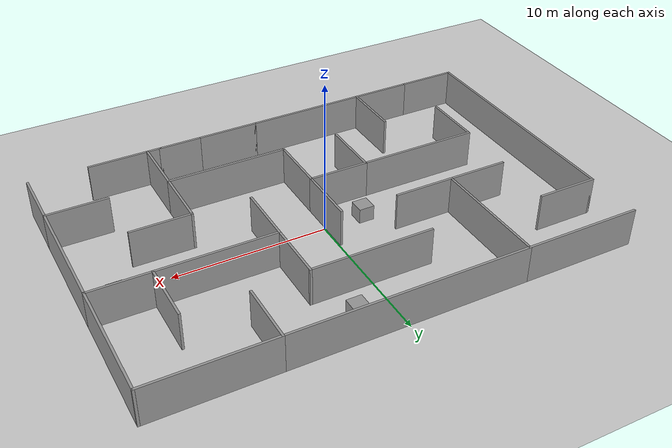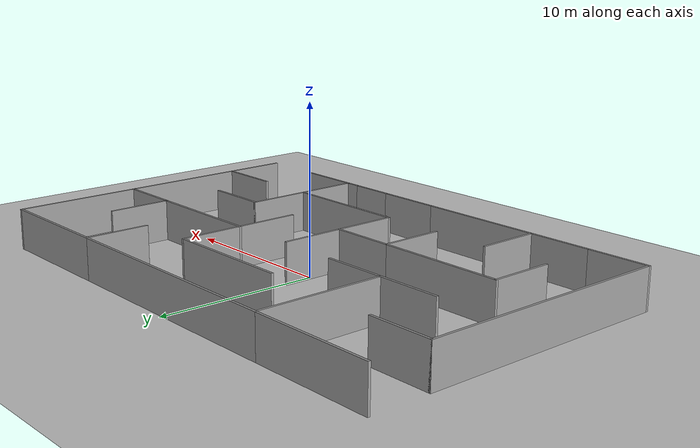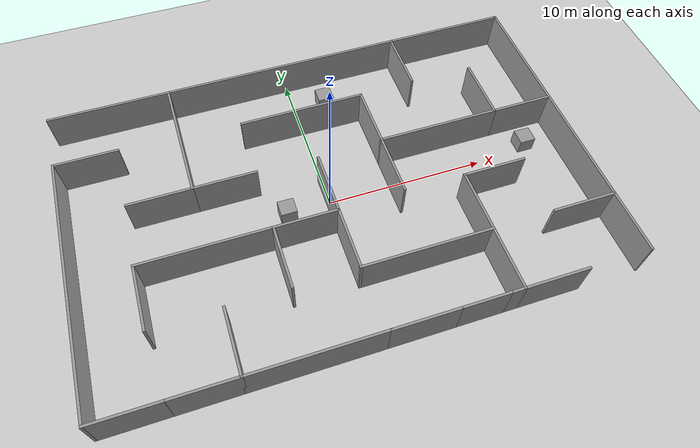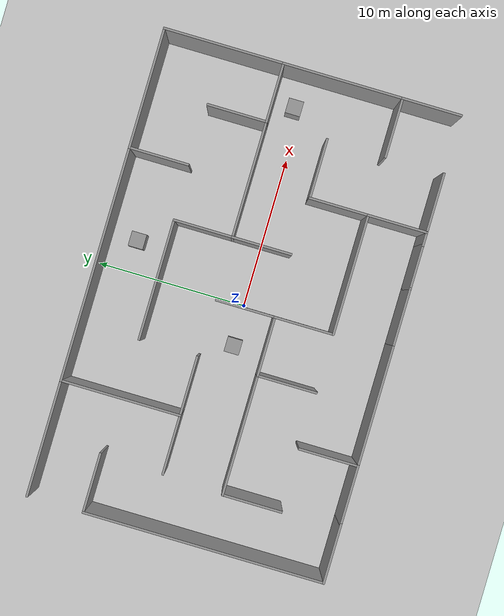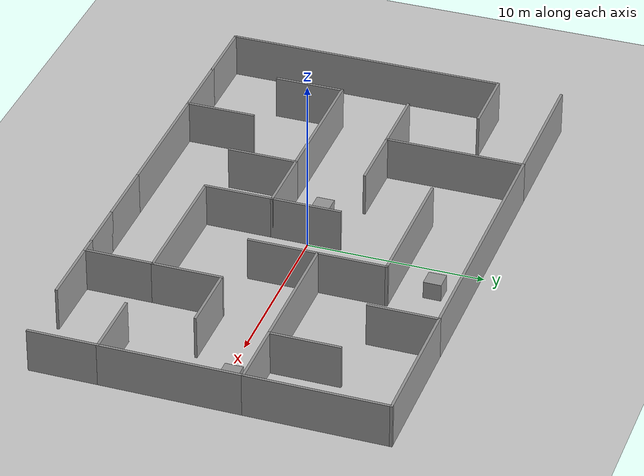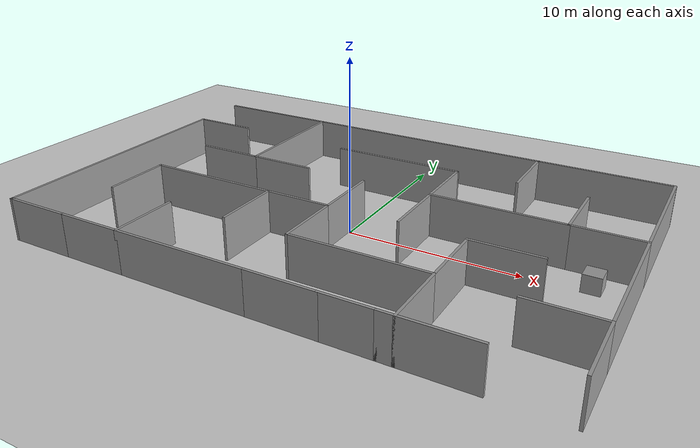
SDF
<sdf version="1.6">
 <world name="default">
  <light name="sun" type="directional">
   <pose>0 0 10 0 -0 0</pose>
   <diffuse>0.8 0.8 0.8 1</diffuse>
   <specular>0.1 0.1 0.1 1</specular>
   <attenuation>
    <range>1000</range>
    <constant>0.9</constant>
    <linear>0.01</linear>
    <quadratic>0.001</quadratic>
   </attenuation>
   <direction>-0.5 0.5 -1</direction>
  </light>
  <model name="ground_plane">
   <static>1</static>
   <link name="link">
    <collision name="collision">
     <geometry><plane><normal>0 0 1</normal><size>100 100</size></plane></geometry>
     <surface><friction><ode><mu>100</mu><mu2>50</mu2></ode></friction></surface>
    </collision>
    <visual name="visual">
     <cast_shadows>0</cast_shadows>
     <geometry><plane><normal>0 0 1</normal><size>100 100</size></plane></geometry>
     <material>
      <script><uri>file://media/materials/scripts/gazebo.material</uri><name>Gazebo/Grey</name></script>
     </material>
    </visual>
   </link>
  </model>
  <gravity>0 0 -9.8</gravity>
  <magnetic_field>6e-06 2.3e-05 -4.2e-05</magnetic_field>
  <atmosphere type="adiabatic"/>
  <physics name="default_physics" default="0" type="ode">
   <max_step_size>0.001</max_step_size>
   <real_time_factor>1</real_time_factor>
   <real_time_update_rate>1000</real_time_update_rate>
  </physics>
  <scene><ambient>0.4 0.4 0.4 1</ambient><background>0.7 0.7 0.7 1</background><shadows>1</shadows></scene>
  <spherical_coordinates>
   <surface_model>EARTH_WGS84</surface_model>
   <latitude_deg>0</latitude_deg>
   <longitude_deg>0</longitude_deg>
   <elevation>0</elevation>
   <heading_deg>0</heading_deg>
  </spherical_coordinates>
  <model name="maze_02">
   <link name="Wall_0">
    <collision name="Wall_0_Collision">
     <geometry><box><size>4 0.15 2.5</size></box></geometry>
     <pose>0 0 1.25 0 -0 0</pose>
    </collision>
    <visual name="Wall_0_Visual">
     <pose>0 0 1.25 0 -0 0</pose>
     <geometry><box><size>4 0.15 2.5</size></box></geometry>
     <material>
      <script><uri>file://media/materials/scripts/gazebo.material</uri><name>Gazebo/Grey</name></script>
      <ambient>1 1 1 1</ambient>
     </material>
    </visual>
    <pose>-13.475 -9.775 0 0 -0 3.14159</pose>
   </link>
   <link name="Wall_1">
    <collision name="Wall_1_Collision">
     <geometry><box><size>16 0.15 2.5</size></box></geometry>
     <pose>0 0 1.25 0 -0 0</pose>
    </collision>
    <visual name="Wall_1_Visual">
     <pose>0 0 1.25 0 -0 0</pose>
     <geometry><box><size>16 0.15 2.5</size></box></geometry>
     <material>
      <script><uri>file://media/materials/scripts/gazebo.material</uri><name>Gazebo/Grey</name></script>
      <ambient>1 1 1 1</ambient>
     </material>
    </visual>
    <pose>-15.4 -1.85 0 0 -0 1.5708</pose>
   </link>
   <link name="Wall_103">
    <collision name="Wall_103_Collision">
     <geometry><box><size>4 0.15 2.5</size></box></geometry>
     <pose>0 0 1.25 0 -0 0</pose>
    </collision>
    <visual name="Wall_103_Visual">
     <pose>0 0 1.25 0 -0 0</pose>
     <geometry><box><size>4 0.15 2.5</size></box></geometry>
     <material>
      <script><uri>file://media/materials/scripts/gazebo.material</uri><name>Gazebo/Grey</name></script>
      <ambient>1 1 1 1</ambient>
     </material>
    </visual>
    <pose>3.95 1e-06 0 0 0 -1.5708</pose>
   </link>
   <link name="Wall_105">
    <collision name="Wall_105_Collision">
     <geometry><box><size>4 0.15 2.5</size></box></geometry>
     <pose>0 0 1.25 0 -0 0</pose>
    </collision>
    <visual name="Wall_105_Visual">
     <pose>0 0 1.25 0 -0 0</pose>
     <geometry><box><size>4 0.15 2.5</size></box></geometry>
     <material>
      <script><uri>file://media/materials/scripts/gazebo.material</uri><name>Gazebo/Grey</name></script>
      <ambient>1 1 1 1</ambient>
     </material>
    </visual>
    <pose>3.95 3.85 0 0 -0 1.5708</pose>
   </link>
   <link name="Wall_106">
    <collision name="Wall_106_Collision">
     <geometry><box><size>8 0.15 2.5</size></box></geometry>
     <pose>0 0 1.25 0 -0 0</pose>
    </collision>
    <visual name="Wall_106_Visual">
     <pose>0 0 1.25 0 -0 0</pose>
     <geometry><box><size>8 0.15 2.5</size></box></geometry>
     <material>
      <script><uri>file://media/materials/scripts/gazebo.material</uri><name>Gazebo/Grey</name></script>
      <ambient>1 1 1 1</ambient>
     </material>
    </visual>
    <pose>0.025 5.775 0 0 -0 3.14159</pose>
   </link>
   <link name="Wall_19">
    <collision name="Wall_19_Collision">
     <geometry><box><size>1 0.15 2.5</size></box></geometry>
     <pose>0 0 1.25 0 -0 0</pose>
    </collision>
    <visual name="Wall_19_Visual">
     <pose>0 0 1.25 0 -0 0</pose>
     <geometry><box><size>1 0.15 2.5</size></box></geometry>
     <material>
      <script><uri>file://media/materials/scripts/gazebo.material</uri><name>Gazebo/Grey</name></script>
      <ambient>1 1 1 1</ambient>
     </material>
    </visual>
    <pose>7.275 -9.775 0 0 -0 0</pose>
   </link>
   <link name="Wall_2">
    <collision name="Wall_2_Collision">
     <geometry><box><size>4 0.15 2.5</size></box></geometry>
     <pose>0 0 1.25 0 -0 0</pose>
    </collision>
    <visual name="Wall_2_Visual">
     <pose>0 0 1.25 0 -0 0</pose>
     <geometry><box><size>4 0.15 2.5</size></box></geometry>
     <material>
      <script><uri>file://media/materials/scripts/gazebo.material</uri><name>Gazebo/Grey</name></script>
      <ambient>1 1 1 1</ambient>
     </material>
    </visual>
    <pose>-13.475 6.075 0 0 -0 0</pose>
   </link>
   <link name="Wall_25">
    <collision name="Wall_25_Collision">
     <geometry><box><size>4 0.15 2.5</size></box></geometry>
     <pose>0 0 1.25 0 -0 0</pose>
    </collision>
    <visual name="Wall_25_Visual">
     <pose>0 0 1.25 0 -0 0</pose>
     <geometry><box><size>4 0.15 2.5</size></box></geometry>
     <material>
      <script><uri>file://media/materials/scripts/gazebo.material</uri><name>Gazebo/Grey</name></script>
      <ambient>1 1 1 1</ambient>
     </material>
    </visual>
    <pose>7.7 -7.85 0 0 -0 1.5708</pose>
   </link>
   <link name="Wall_26">
    <collision name="Wall_26_Collision">
     <geometry><box><size>4 0.15 2.5</size></box></geometry>
     <pose>0 0 1.25 0 -0 0</pose>
    </collision>
    <visual name="Wall_26_Visual">
     <pose>0 0 1.25 0 -0 0</pose>
     <geometry><box><size>4 0.15 2.5</size></box></geometry>
     <material>
      <script><uri>file://media/materials/scripts/gazebo.material</uri><name>Gazebo/Grey</name></script>
      <ambient>1 1 1 1</ambient>
     </material>
    </visual>
    <pose>7.7 -4 0 0 -0 1.5708</pose>
   </link>
   <link name="Wall_27">
    <collision name="Wall_27_Collision">
     <geometry><box><size>4 0.15 2.5</size></box></geometry>
     <pose>0 0 1.25 0 -0 0</pose>
    </collision>
    <visual name="Wall_27_Visual">
     <pose>0 0 1.25 0 -0 0</pose>
     <geometry><box><size>4 0.15 2.5</size></box></geometry>
     <material>
      <script><uri>file://media/materials/scripts/gazebo.material</uri><name>Gazebo/Grey</name></script>
      <ambient>1 1 1 1</ambient>
     </material>
    </visual>
    <pose>9.625 -2.075 0 0 -0 0</pose>
   </link>
   <link name="Wall_29">
    <collision name="Wall_29_Collision">
     <geometry><box><size>8 0.15 2.5</size></box></geometry>
     <pose>0 0 1.25 0 -0 0</pose>
    </collision>
    <visual name="Wall_29_Visual">
     <pose>0 0 1.25 0 -0 0</pose>
     <geometry><box><size>8 0.15 2.5</size></box></geometry>
     <material>
      <script><uri>file://media/materials/scripts/gazebo.material</uri><name>Gazebo/Grey</name></script>
      <ambient>1 1 1 1</ambient>
     </material>
    </visual>
    <pose>3.775 -5.925 0 0 -0 3.14159</pose>
   </link>
   <link name="Wall_30">
    <collision name="Wall_30_Collision">
     <geometry><box><size>4 0.15 2.5</size></box></geometry>
     <pose>0 0 1.25 0 -0 0</pose>
    </collision>
    <visual name="Wall_30_Visual">
     <pose>0 0 1.25 0 -0 0</pose>
     <geometry><box><size>4 0.15 2.5</size></box></geometry>
     <material>
      <script><uri>file://media/materials/scripts/gazebo.material</uri><name>Gazebo/Grey</name></script>
      <ambient>1 1 1 1</ambient>
     </material>
    </visual>
    <pose>-0.15 -4 0 0 -0 1.5708</pose>
   </link>
   <link name="Wall_31">
    <collision name="Wall_31_Collision">
     <geometry><box><size>4 0.15 2.5</size></box></geometry>
     <pose>0 0 1.25 0 -0 0</pose>
    </collision>
    <visual name="Wall_31_Visual">
     <pose>0 0 1.25 0 -0 0</pose>
     <geometry><box><size>4 0.15 2.5</size></box></geometry>
     <material>
      <script><uri>file://media/materials/scripts/gazebo.material</uri><name>Gazebo/Grey</name></script>
      <ambient>1 1 1 1</ambient>
     </material>
    </visual>
    <pose>-2.075 -2.075 0 0 -0 3.14159</pose>
   </link>
   <link name="Wall_32">
    <collision name="Wall_32_Collision">
     <geometry><box><size>4 0.15 2.5</size></box></geometry>
     <pose>0 0 1.25 0 -0 0</pose>
    </collision>
    <visual name="Wall_32_Visual">
     <pose>0 0 1.25 0 -0 0</pose>
     <geometry><box><size>4 0.15 2.5</size></box></geometry>
     <material>
      <script><uri>file://media/materials/scripts/gazebo.material</uri><name>Gazebo/Grey</name></script>
      <ambient>1 1 1 1</ambient>
     </material>
    </visual>
    <pose>-4 -4 0 0 0 -1.5708</pose>
   </link>
   <link name="Wall_34">
    <collision name="Wall_34_Collision">
     <geometry><box><size>8 0.15 2.5</size></box></geometry>
     <pose>0 0 1.25 0 -0 0</pose>
    </collision>
    <visual name="Wall_34_Visual">
     <pose>0 0 1.25 0 -0 0</pose>
     <geometry><box><size>8 0.15 2.5</size></box></geometry>
     <material>
      <script><uri>file://media/materials/scripts/gazebo.material</uri><name>Gazebo/Grey</name></script>
      <ambient>1 1 1 1</ambient>
     </material>
    </visual>
    <pose>-7.925 -2.075 0 0 -0 3.14159</pose>
   </link>
   <link name="Wall_35">
    <collision name="Wall_35_Collision">
     <geometry><box><size>4 0.15 2.5</size></box></geometry>
     <pose>0 0 1.25 0 -0 0</pose>
    </collision>
    <visual name="Wall_35_Visual">
     <pose>0 0 1.25 0 -0 0</pose>
     <geometry><box><size>4 0.15 2.5</size></box></geometry>
     <material>
      <script><uri>file://media/materials/scripts/gazebo.material</uri><name>Gazebo/Grey</name></script>
      <ambient>1 1 1 1</ambient>
     </material>
    </visual>
    <pose>-11.85 -4 0 0 0 -1.5708</pose>
   </link>
   <link name="Wall_37">
    <collision name="Wall_37_Collision">
     <geometry><box><size>4 0.15 2.5</size></box></geometry>
     <pose>0 0 1.25 0 -0 0</pose>
    </collision>
    <visual name="Wall_37_Visual">
     <pose>0 0 1.25 0 -0 0</pose>
     <geometry><box><size>4 0.15 2.5</size></box></geometry>
     <material>
      <script><uri>file://media/materials/scripts/gazebo.material</uri><name>Gazebo/Grey</name></script>
      <ambient>1 1 1 1</ambient>
     </material>
    </visual>
    <pose>-0.15 -0.149999 0 0 -0 1.5708</pose>
   </link>
   <link name="Wall_4">
    <collision name="Wall_4_Collision">
     <geometry><box><size>4 0.15 2.5</size></box></geometry>
     <pose>0 0 1.25 0 -0 0</pose>
    </collision>
    <visual name="Wall_4_Visual">
     <pose>0 0 1.25 0 -0 0</pose>
     <geometry><box><size>4 0.15 2.5</size></box></geometry>
     <material>
      <script><uri>file://media/materials/scripts/gazebo.material</uri><name>Gazebo/Grey</name></script>
      <ambient>1 1 1 1</ambient>
     </material>
    </visual>
    <pose>-9.625 -9.775 0 0 -0 0</pose>
   </link>
   <link name="Wall_43">
    <collision name="Wall_43_Collision">
     <geometry><box><size>4 0.15 2.5</size></box></geometry>
     <pose>0 0 1.25 0 -0 0</pose>
    </collision>
    <visual name="Wall_43_Visual">
     <pose>0 0 1.25 0 -0 0</pose>
     <geometry><box><size>4 0.15 2.5</size></box></geometry>
     <material>
      <script><uri>file://media/materials/scripts/gazebo.material</uri><name>Gazebo/Grey</name></script>
      <ambient>1 1 1 1</ambient>
     </material>
    </visual>
    <pose>9.625 -9.775 0 0 -0 0</pose>
   </link>
   <link name="Wall_5">
    <collision name="Wall_5_Collision">
     <geometry><box><size>4 0.15 2.5</size></box></geometry>
     <pose>0 0 1.25 0 -0 0</pose>
    </collision>
    <visual name="Wall_5_Visual">
     <pose>0 0 1.25 0 -0 0</pose>
     <geometry><box><size>4 0.15 2.5</size></box></geometry>
     <material>
      <script><uri>file://media/materials/scripts/gazebo.material</uri><name>Gazebo/Grey</name></script>
      <ambient>1 1 1 1</ambient>
     </material>
    </visual>
    <pose>-7.7 -7.85 0 0 -0 1.5708</pose>
   </link>
   <link name="Wall_60">
    <collision name="Wall_60_Collision">
     <geometry><box><size>4 0.15 2.5</size></box></geometry>
     <pose>0 0 1.25 0 -0 0</pose>
    </collision>
    <visual name="Wall_60_Visual">
     <pose>0 0 1.25 0 -0 0</pose>
     <geometry><box><size>4 0.15 2.5</size></box></geometry>
     <material>
      <script><uri>file://media/materials/scripts/gazebo.material</uri><name>Gazebo/Grey</name></script>
      <ambient>1 1 1 1</ambient>
     </material>
    </visual>
    <pose>15.4 -7.85 0 0 -0 1.5708</pose>
   </link>
   <link name="Wall_61">
    <collision name="Wall_61_Collision">
     <geometry><box><size>4 0.15 2.5</size></box></geometry>
     <pose>0 0 1.25 0 -0 0</pose>
    </collision>
    <visual name="Wall_61_Visual">
     <pose>0 0 1.25 0 -0 0</pose>
     <geometry><box><size>4 0.15 2.5</size></box></geometry>
     <material>
      <script><uri>file://media/materials/scripts/gazebo.material</uri><name>Gazebo/Grey</name></script>
      <ambient>1 1 1 1</ambient>
     </material>
    </visual>
    <pose>13.475 -5.925 0 0 -0 3.14159</pose>
   </link>
   <link name="Wall_63">
    <collision name="Wall_63_Collision">
     <geometry><box><size>8 0.15 2.5</size></box></geometry>
     <pose>0 0 1.25 0 -0 0</pose>
    </collision>
    <visual name="Wall_63_Visual">
     <pose>0 0 1.25 0 -0 0</pose>
     <geometry><box><size>8 0.15 2.5</size></box></geometry>
     <material>
      <script><uri>file://media/materials/scripts/gazebo.material</uri><name>Gazebo/Grey</name></script>
      <ambient>1 1 1 1</ambient>
     </material>
    </visual>
    <pose>15.4 -2 0 0 -0 1.5708</pose>
   </link>
   <link name="Wall_65">
    <collision name="Wall_65_Collision">
     <geometry><box><size>4 0.15 2.5</size></box></geometry>
     <pose>0 0 1.25 0 -0 0</pose>
    </collision>
    <visual name="Wall_65_Visual">
     <pose>0 0 1.25 0 -0 0</pose>
     <geometry><box><size>4 0.15 2.5</size></box></geometry>
     <material>
      <script><uri>file://media/materials/scripts/gazebo.material</uri><name>Gazebo/Grey</name></script>
      <ambient>1 1 1 1</ambient>
     </material>
    </visual>
    <pose>13.475 1.925 0 0 -0 3.14159</pose>
   </link>
   <link name="Wall_66">
    <collision name="Wall_66_Collision">
     <geometry><box><size>4 0.15 2.5</size></box></geometry>
     <pose>0 0 1.25 0 -0 0</pose>
    </collision>
    <visual name="Wall_66_Visual">
     <pose>0 0 1.25 0 -0 0</pose>
     <geometry><box><size>4 0.15 2.5</size></box></geometry>
     <material>
      <script><uri>file://media/materials/scripts/gazebo.material</uri><name>Gazebo/Grey</name></script>
      <ambient>1 1 1 1</ambient>
     </material>
    </visual>
    <pose>11.55 3.85 0 0 -0 1.5708</pose>
   </link>
   <link name="Wall_68">
    <collision name="Wall_68_Collision">
     <geometry><box><size>8 0.15 2.5</size></box></geometry>
     <pose>0 0 1.25 0 -0 0</pose>
    </collision>
    <visual name="Wall_68_Visual">
     <pose>0 0 1.25 0 -0 0</pose>
     <geometry><box><size>8 0.15 2.5</size></box></geometry>
     <material>
      <script><uri>file://media/materials/scripts/gazebo.material</uri><name>Gazebo/Grey</name></script>
      <ambient>1 1 1 1</ambient>
     </material>
    </visual>
    <pose>15.4 5.85 0 0 -0 1.5708</pose>
   </link>
   <link name="Wall_7">
    <collision name="Wall_7_Collision">
     <geometry><box><size>8 0.15 2.5</size></box></geometry>
     <pose>0 0 1.25 0 -0 0</pose>
    </collision>
    <visual name="Wall_7_Visual">
     <pose>0 0 1.25 0 -0 0</pose>
     <geometry><box><size>8 0.15 2.5</size></box></geometry>
     <material>
      <script><uri>file://media/materials/scripts/gazebo.material</uri><name>Gazebo/Grey</name></script>
      <ambient>1 1 1 1</ambient>
     </material>
    </visual>
    <pose>-3.775 -9.775 0 0 -0 0</pose>
   </link>
   <link name="Wall_72">
    <collision name="Wall_72_Collision">
     <geometry><box><size>8 0.15 2.5</size></box></geometry>
     <pose>0 0 1.25 0 -0 0</pose>
    </collision>
    <visual name="Wall_72_Visual">
     <pose>0 0 1.25 0 -0 0</pose>
     <geometry><box><size>8 0.15 2.5</size></box></geometry>
     <material>
      <script><uri>file://media/materials/scripts/gazebo.material</uri><name>Gazebo/Grey</name></script>
      <ambient>1 1 1 1</ambient>
     </material>
    </visual>
    <pose>11.475 9.775 0 0 -0 3.14159</pose>
   </link>
   <link name="Wall_73">
    <collision name="Wall_73_Collision">
     <geometry><box><size>4 0.15 2.5</size></box></geometry>
     <pose>0 0 1.25 0 -0 0</pose>
    </collision>
    <visual name="Wall_73_Visual">
     <pose>0 0 1.25 0 -0 0</pose>
     <geometry><box><size>4 0.15 2.5</size></box></geometry>
     <material>
      <script><uri>file://media/materials/scripts/gazebo.material</uri><name>Gazebo/Grey</name></script>
      <ambient>1 1 1 1</ambient>
     </material>
    </visual>
    <pose>7.55 7.85 0 0 0 -1.5708</pose>
   </link>
   <link name="Wall_76">
    <collision name="Wall_76_Collision">
     <geometry><box><size>15.5 0.15 2.5</size></box></geometry>
     <pose>0 0 1.25 0 -0 0</pose>
    </collision>
    <visual name="Wall_76_Visual">
     <pose>0 0 1.25 0 -0 0</pose>
     <geometry><box><size>15.5 0.15 2.5</size></box></geometry>
     <material>
      <script><uri>file://media/materials/scripts/gazebo.material</uri><name>Gazebo/Grey</name></script>
      <ambient>1 1 1 1</ambient>
     </material>
    </visual>
    <pose>-0.125 9.775 0 0 -0 3.14159</pose>
   </link>
   <link name="Wall_77">
    <collision name="Wall_77_Collision">
     <geometry><box><size>7.75 0.15 2.5</size></box></geometry>
     <pose>0 0 1.25 0 -0 0</pose>
    </collision>
    <visual name="Wall_77_Visual">
     <pose>0 0 1.25 0 -0 0</pose>
     <geometry><box><size>7.75 0.15 2.5</size></box></geometry>
     <material>
      <script><uri>file://media/materials/scripts/gazebo.material</uri><name>Gazebo/Grey</name></script>
      <ambient>1 1 1 1</ambient>
     </material>
    </visual>
    <pose>-11.6 9.775 0 0 -0 3.14159</pose>
   </link>
   <link name="Wall_8">
    <collision name="Wall_8_Collision">
     <geometry><box><size>4 0.15 2.5</size></box></geometry>
     <pose>0 0 1.25 0 -0 0</pose>
    </collision>
    <visual name="Wall_8_Visual">
     <pose>0 0 1.25 0 -0 0</pose>
     <geometry><box><size>4 0.15 2.5</size></box></geometry>
     <material>
      <script><uri>file://media/materials/scripts/gazebo.material</uri><name>Gazebo/Grey</name></script>
      <ambient>1 1 1 1</ambient>
     </material>
    </visual>
    <pose>2.075 -9.775 0 0 -0 0</pose>
   </link>
   <link name="Wall_83">
    <collision name="Wall_83_Collision">
     <geometry><box><size>8 0.15 2.5</size></box></geometry>
     <pose>0 0 1.25 0 -0 0</pose>
    </collision>
    <visual name="Wall_83_Visual">
     <pose>0 0 1.25 0 -0 0</pose>
     <geometry><box><size>8 0.15 2.5</size></box></geometry>
     <material>
      <script><uri>file://media/materials/scripts/gazebo.material</uri><name>Gazebo/Grey</name></script>
      <ambient>1 1 1 1</ambient>
     </material>
    </visual>
    <pose>-7.8 5.85 0 0 0 -1.5708</pose>
   </link>
   <link name="Wall_84">
    <collision name="Wall_84_Collision">
     <geometry><box><size>4 0.15 2.5</size></box></geometry>
     <pose>0 0 1.25 0 -0 0</pose>
    </collision>
    <visual name="Wall_84_Visual">
     <pose>0 0 1.25 0 -0 0</pose>
     <geometry><box><size>4 0.15 2.5</size></box></geometry>
     <material>
      <script><uri>file://media/materials/scripts/gazebo.material</uri><name>Gazebo/Grey</name></script>
      <ambient>1 1 1 1</ambient>
     </material>
    </visual>
    <pose>-9.725 1.925 0 0 -0 3.14159</pose>
   </link>
   <link name="Wall_86">
    <collision name="Wall_86_Collision">
     <geometry><box><size>4 0.15 2.5</size></box></geometry>
     <pose>0 0 1.25 0 -0 0</pose>
    </collision>
    <visual name="Wall_86_Visual">
     <pose>0 0 1.25 0 -0 0</pose>
     <geometry><box><size>4 0.15 2.5</size></box></geometry>
     <material>
      <script><uri>file://media/materials/scripts/gazebo.material</uri><name>Gazebo/Grey</name></script>
      <ambient>1 1 1 1</ambient>
     </material>
    </visual>
    <pose>-5.875 1.925 0 0 -0 0</pose>
   </link>
   <link name="Wall_9">
    <collision name="Wall_9_Collision">
     <geometry><box><size>3 0.15 2.5</size></box></geometry>
     <pose>0 0 1.25 0 -0 0</pose>
    </collision>
    <visual name="Wall_9_Visual">
     <pose>0 0 1.25 0 -0 0</pose>
     <geometry><box><size>3 0.15 2.5</size></box></geometry>
     <material>
      <script><uri>file://media/materials/scripts/gazebo.material</uri><name>Gazebo/Grey</name></script>
      <ambient>1 1 1 1</ambient>
     </material>
    </visual>
    <pose>5.425 -9.775 0 0 -0 0</pose>
   </link>
   <link name="Wall_96">
    <collision name="Wall_96_Collision">
     <geometry><box><size>7.75 0.15 2.5</size></box></geometry>
     <pose>0 0 1.25 0 -0 0</pose>
    </collision>
    <visual name="Wall_96_Visual">
     <pose>0 0 1.25 0 -0 0</pose>
     <geometry><box><size>7.75 0.15 2.5</size></box></geometry>
     <material>
      <script><uri>file://media/materials/scripts/gazebo.material</uri><name>Gazebo/Grey</name></script>
      <ambient>1 1 1 1</ambient>
     </material>
    </visual>
    <pose>7.75 1.925 0 0 -0 3.14159</pose>
   </link>
   <static>1</static>
  </model>
  <model name="unit_box_0">
   <pose>-2.7071 -0.063191 0.499995 0 1e-05 0</pose>
   <link name="link">
    <inertial>
     <mass>1</mass>
     <inertia>
      <ixx>0.166667</ixx>
      <ixy>0</ixy>
      <ixz>0</ixz>
      <iyy>0.166667</iyy>
      <iyz>0</iyz>
      <izz>0.166667</izz>
     </inertia>
    </inertial>
    <collision name="collision"><geometry><box><size>1 1 1</size></box></geometry></collision>
    <visual name="visual">
     <geometry><box><size>1 1 1</size></box></geometry>
     <material>
      <script><name>Gazebo/Grey</name><uri>file://media/materials/scripts/gazebo.material</uri></script>
     </material>
    </visual>
   </link>
  </model>
  <model name="unit_box_1">
   <pose>13.3373 0.49772 0.499995 -1e-05 0 0</pose>
   <link name="link">
    <inertial>
     <mass>1</mass>
     <inertia>
      <ixx>0.166667</ixx>
      <ixy>0</ixy>
      <ixz>0</ixz>
      <iyy>0.166667</iyy>
      <iyz>0</iyz>
      <izz>0.166667</izz>
     </inertia>
    </inertial>
    <collision name="collision"><geometry><box><size>1 1 1</size></box></geometry></collision>
    <visual name="visual">
     <geometry><box><size>1 1 1</size></box></geometry>
     <material>
      <script><name>Gazebo/Grey</name><uri>file://media/materials/scripts/gazebo.material</uri></script>
     </material>
    </visual>
   </link>
  </model>
  <model name="unit_box_2">
   <pose>2.13629 7.87798 0.5 0 -0 0</pose>
   <link name="link">
    <inertial>
     <mass>1</mass>
     <inertia>
      <ixx>0.166667</ixx>
      <ixy>0</ixy>
      <ixz>0</ixz>
      <iyy>0.166667</iyy>
      <iyz>0</iyz>
      <izz>0.166667</izz>
     </inertia>
    </inertial>
    <collision name="collision"><geometry><box><size>1 1 1</size></box></geometry></collision>
    <visual name="visual">
     <geometry><box><size>1 1 1</size></box></geometry>
     <material>
      <script><name>Gazebo/Grey</name><uri>file://media/materials/scripts/gazebo.material</uri></script>
     </material>
    </visual>
   </link>
  </model>
 </world>
</sdf>
